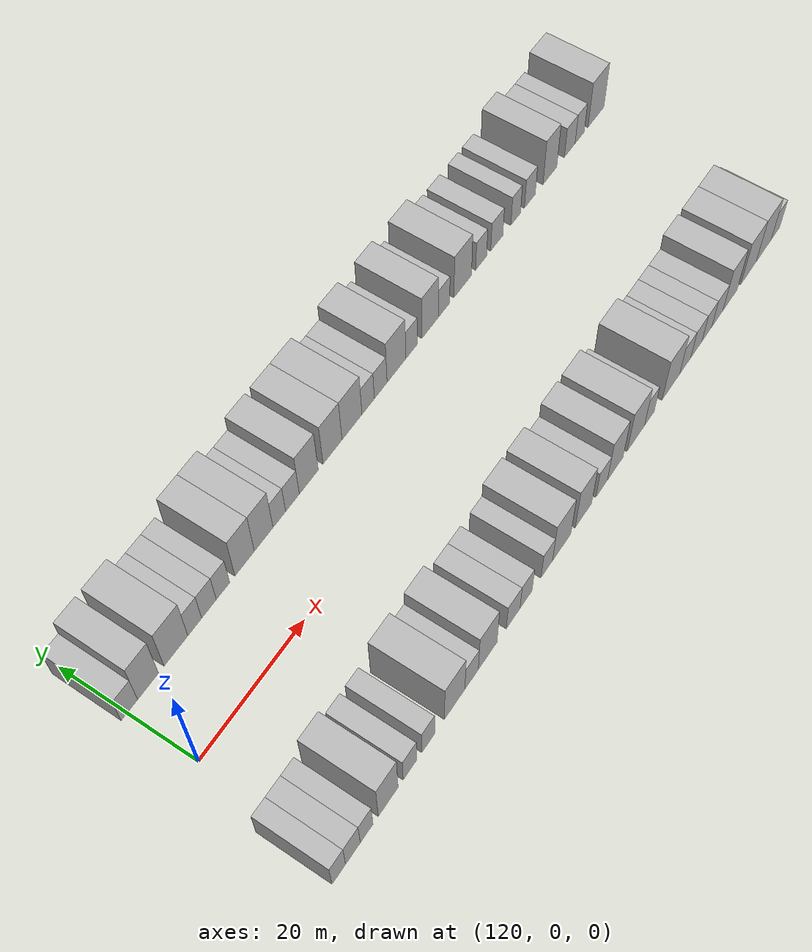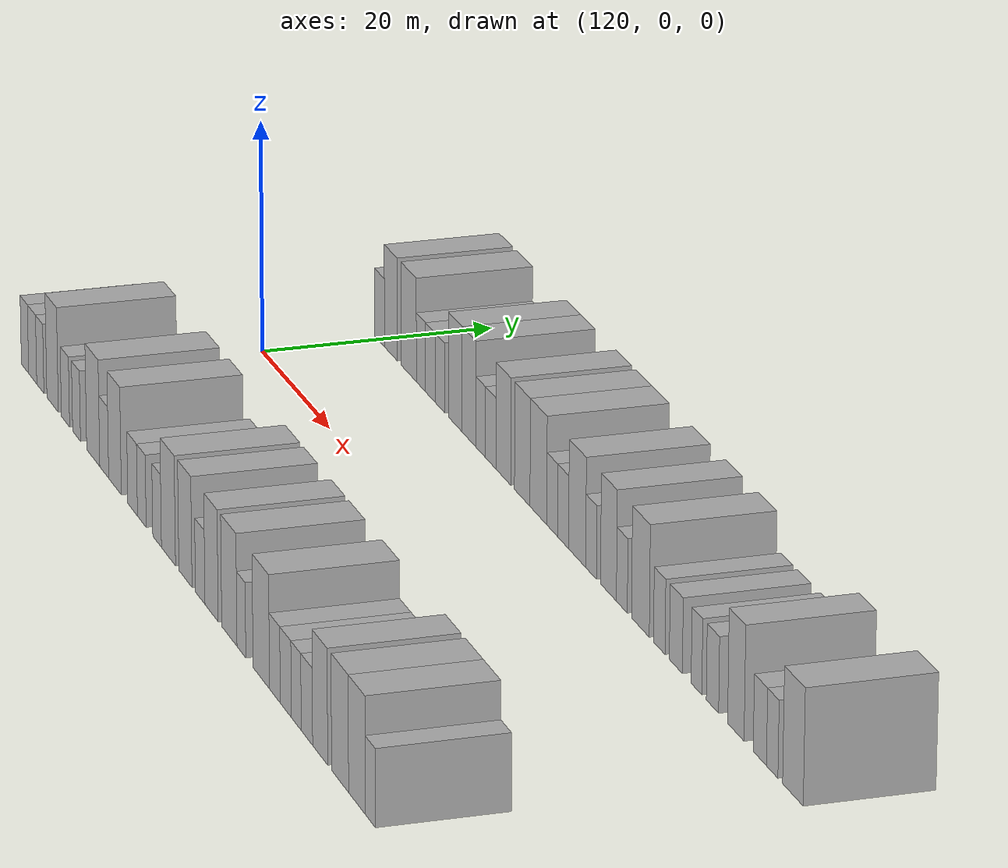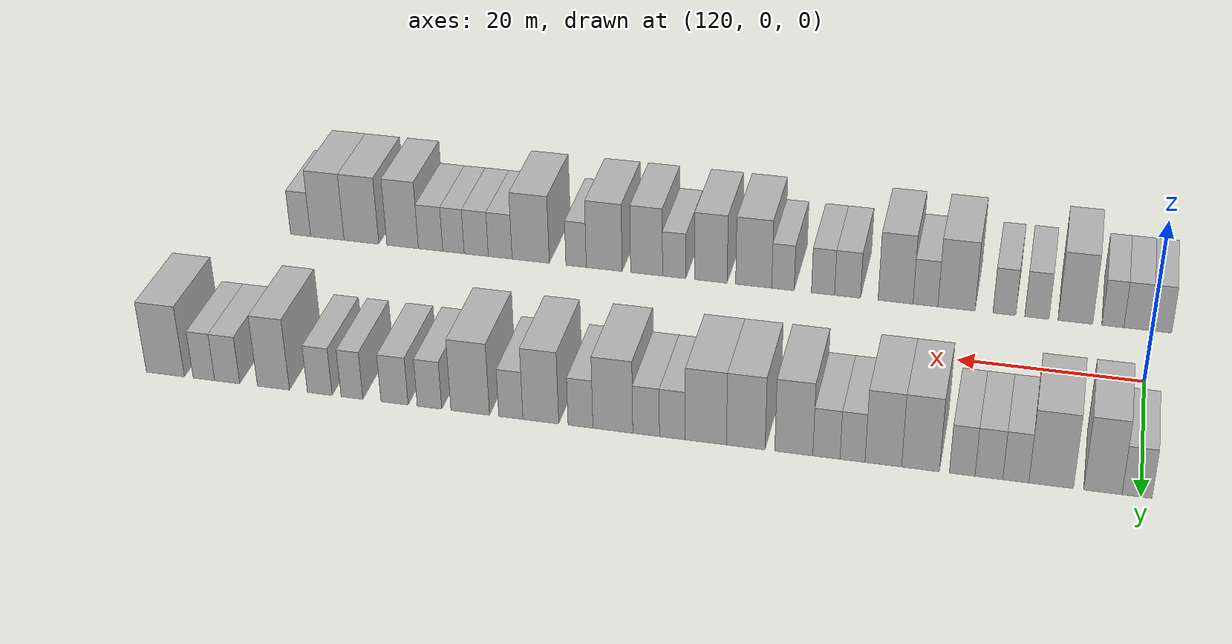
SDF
<sdf version="1.6">
 <world name="default">
  <model name="building_29">
   <static>1</static>
   <pose>120.4234 15.0000 0 0.000000 0.000000 1.570796</pose>
   <link name="link">
    <pose>0 0 3.00 0 0 0</pose>
    <collision name="collision"><geometry><box><size>10.0000 2.9247 6.0000</size></box></geometry></collision>
    <visual name="visual">
     <cast_shadows>0</cast_shadows>
     <geometry><box><size>10.0000 2.9247 6.0000</size></box></geometry>
     <material>
      <script>
       <uri>model://HANNAS_wall/materials/scripts</uri>
       <uri>model://HANNAS_wall/materials/textures</uri>
       <name>vrc/HANNAS_wall</name>
      </script>
     </material>
    </visual>
   </link>
  </model>
  <model name="building_30">
   <static>1</static>
   <pose>123.7611 15.0000 0 0.000000 0.000000 1.570796</pose>
   <link name="link">
    <pose>0 0 4.50 0 0 0</pose>
    <collision name="collision"><geometry><box><size>10.0000 3.7508 9.0000</size></box></geometry></collision>
    <visual name="visual">
     <cast_shadows>0</cast_shadows>
     <geometry><box><size>10.0000 3.7508 9.0000</size></box></geometry>
     <material>
      <script>
       <uri>model://HANNAS_wall/materials/scripts</uri>
       <uri>model://HANNAS_wall/materials/textures</uri>
       <name>vrc/HANNAS_wall</name>
      </script>
     </material>
    </visual>
   </link>
  </model>
  <model name="building_31">
   <static>1</static>
   <pose>128.8408 15.0000 0 0.000000 0.000000 1.570796</pose>
   <link name="link">
    <pose>0 0 4.50 0 0 0</pose>
    <collision name="collision"><geometry><box><size>10.0000 4.4086 9.0000</size></box></geometry></collision>
    <visual name="visual">
     <cast_shadows>0</cast_shadows>
     <geometry><box><size>10.0000 4.4086 9.0000</size></box></geometry>
     <material>
      <script>
       <uri>model://HANNAS_wall/materials/scripts</uri>
       <uri>model://HANNAS_wall/materials/textures</uri>
       <name>vrc/HANNAS_wall</name>
      </script>
     </material>
    </visual>
   </link>
  </model>
  <model name="building_32">
   <static>1</static>
   <pose>132.3393 15.0000 0 0.000000 0.000000 1.570796</pose>
   <link name="link">
    <pose>0 0 3.00 0 0 0</pose>
    <collision name="collision"><geometry><box><size>10.0000 2.5883 6.0000</size></box></geometry></collision>
    <visual name="visual">
     <cast_shadows>0</cast_shadows>
     <geometry><box><size>10.0000 2.5883 6.0000</size></box></geometry>
     <material>
      <script>
       <uri>model://HANNAS_wall/materials/scripts</uri>
       <uri>model://HANNAS_wall/materials/textures</uri>
       <name>vrc/HANNAS_wall</name>
      </script>
     </material>
    </visual>
   </link>
  </model>
  <model name="building_33">
   <static>1</static>
   <pose>135.0188 15.0000 0 0.000000 0.000000 1.570796</pose>
   <link name="link">
    <pose>0 0 3.00 0 0 0</pose>
    <collision name="collision"><geometry><box><size>10.0000 2.7707 6.0000</size></box></geometry></collision>
    <visual name="visual">
     <cast_shadows>0</cast_shadows>
     <geometry><box><size>10.0000 2.7707 6.0000</size></box></geometry>
     <material>
      <script>
       <uri>model://HANNAS_wall/materials/scripts</uri>
       <uri>model://HANNAS_wall/materials/textures</uri>
       <name>vrc/HANNAS_wall</name>
      </script>
     </material>
    </visual>
   </link>
  </model>
  <model name="building_34">
   <static>1</static>
   <pose>137.6904 15.0000 0 0.000000 0.000000 1.570796</pose>
   <link name="link">
    <pose>0 0 3.00 0 0 0</pose>
    <collision name="collision"><geometry><box><size>10.0000 2.5725 6.0000</size></box></geometry></collision>
    <visual name="visual">
     <cast_shadows>0</cast_shadows>
     <geometry><box><size>10.0000 2.5725 6.0000</size></box></geometry>
     <material>
      <script>
       <uri>model://HANNAS_wall/materials/scripts</uri>
       <uri>model://HANNAS_wall/materials/textures</uri>
       <name>vrc/HANNAS_wall</name>
      </script>
     </material>
    </visual>
   </link>
  </model>
  <model name="building_35">
   <static>1</static>
   <pose>141.8845 15.0000 0 0.000000 0.000000 1.570796</pose>
   <link name="link">
    <pose>0 0 4.50 0 0 0</pose>
    <collision name="collision"><geometry><box><size>10.0000 3.8157 9.0000</size></box></geometry></collision>
    <visual name="visual">
     <cast_shadows>0</cast_shadows>
     <geometry><box><size>10.0000 3.8157 9.0000</size></box></geometry>
     <material>
      <script>
       <uri>model://HANNAS_wall/materials/scripts</uri>
       <uri>model://HANNAS_wall/materials/textures</uri>
       <name>vrc/HANNAS_wall</name>
      </script>
     </material>
    </visual>
   </link>
  </model>
  <model name="building_36">
   <static>1</static>
   <pose>145.6510 15.0000 0 0.000000 0.000000 1.570796</pose>
   <link name="link">
    <pose>0 0 4.50 0 0 0</pose>
    <collision name="collision"><geometry><box><size>10.0000 3.7173 9.0000</size></box></geometry></collision>
    <visual name="visual">
     <cast_shadows>0</cast_shadows>
     <geometry><box><size>10.0000 3.7173 9.0000</size></box></geometry>
     <material>
      <script>
       <uri>model://HANNAS_wall/materials/scripts</uri>
       <uri>model://HANNAS_wall/materials/textures</uri>
       <name>vrc/HANNAS_wall</name>
      </script>
     </material>
    </visual>
   </link>
  </model>
  <model name="building_37">
   <static>1</static>
   <pose>148.7827 15.0000 0 0.000000 0.000000 1.570796</pose>
   <link name="link">
    <pose>0 0 3.00 0 0 0</pose>
    <collision name="collision"><geometry><box><size>10.0000 2.5460 6.0000</size></box></geometry></collision>
    <visual name="visual">
     <cast_shadows>0</cast_shadows>
     <geometry><box><size>10.0000 2.5460 6.0000</size></box></geometry>
     <material>
      <script>
       <uri>model://HANNAS_wall/materials/scripts</uri>
       <uri>model://HANNAS_wall/materials/textures</uri>
       <name>vrc/HANNAS_wall</name>
      </script>
     </material>
    </visual>
   </link>
  </model>
  <model name="building_38">
   <static>1</static>
   <pose>151.4500 15.0000 0 0.000000 0.000000 1.570796</pose>
   <link name="link">
    <pose>0 0 3.00 0 0 0</pose>
    <collision name="collision"><geometry><box><size>10.0000 2.7886 6.0000</size></box></geometry></collision>
    <visual name="visual">
     <cast_shadows>0</cast_shadows>
     <geometry><box><size>10.0000 2.7886 6.0000</size></box></geometry>
     <material>
      <script>
       <uri>model://HANNAS_wall/materials/scripts</uri>
       <uri>model://HANNAS_wall/materials/textures</uri>
       <name>vrc/HANNAS_wall</name>
      </script>
     </material>
    </visual>
   </link>
  </model>
  <model name="building_39">
   <static>1</static>
   <pose>154.8027 15.0000 0 0.000000 0.000000 1.570796</pose>
   <link name="link">
    <pose>0 0 4.50 0 0 0</pose>
    <collision name="collision"><geometry><box><size>10.0000 3.9167 9.0000</size></box></geometry></collision>
    <visual name="visual">
     <cast_shadows>0</cast_shadows>
     <geometry><box><size>10.0000 3.9167 9.0000</size></box></geometry>
     <material>
      <script>
       <uri>model://HANNAS_wall/materials/scripts</uri>
       <uri>model://HANNAS_wall/materials/textures</uri>
       <name>vrc/HANNAS_wall</name>
      </script>
     </material>
    </visual>
   </link>
  </model>
  <model name="building_40">
   <static>1</static>
   <pose>159.7739 15.0000 0 0.000000 0.000000 1.570796</pose>
   <link name="link">
    <pose>0 0 4.50 0 0 0</pose>
    <collision name="collision"><geometry><box><size>10.0000 4.0258 9.0000</size></box></geometry></collision>
    <visual name="visual">
     <cast_shadows>0</cast_shadows>
     <geometry><box><size>10.0000 4.0258 9.0000</size></box></geometry>
     <material>
      <script>
       <uri>model://HANNAS_wall/materials/scripts</uri>
       <uri>model://HANNAS_wall/materials/textures</uri>
       <name>vrc/HANNAS_wall</name>
      </script>
     </material>
    </visual>
   </link>
  </model>
  <model name="building_41">
   <static>1</static>
   <pose>163.9372 15.0000 0 0.000000 0.000000 1.570796</pose>
   <link name="link">
    <pose>0 0 4.50 0 0 0</pose>
    <collision name="collision"><geometry><box><size>10.0000 4.3008 9.0000</size></box></geometry></collision>
    <visual name="visual">
     <cast_shadows>0</cast_shadows>
     <geometry><box><size>10.0000 4.3008 9.0000</size></box></geometry>
     <material>
      <script>
       <uri>model://HANNAS_wall/materials/scripts</uri>
       <uri>model://HANNAS_wall/materials/textures</uri>
       <name>vrc/HANNAS_wall</name>
      </script>
     </material>
    </visual>
   </link>
  </model>
  <model name="building_42">
   <static>1</static>
   <pose>167.4386 15.0000 0 0.000000 0.000000 1.570796</pose>
   <link name="link">
    <pose>0 0 3.00 0 0 0</pose>
    <collision name="collision"><geometry><box><size>10.0000 2.7020 6.0000</size></box></geometry></collision>
    <visual name="visual">
     <cast_shadows>0</cast_shadows>
     <geometry><box><size>10.0000 2.7020 6.0000</size></box></geometry>
     <material>
      <script>
       <uri>model://HANNAS_wall/materials/scripts</uri>
       <uri>model://HANNAS_wall/materials/textures</uri>
       <name>vrc/HANNAS_wall</name>
      </script>
     </material>
    </visual>
   </link>
  </model>
  <model name="building_43">
   <static>1</static>
   <pose>170.1975 15.0000 0 0.000000 0.000000 1.570796</pose>
   <link name="link">
    <pose>0 0 3.00 0 0 0</pose>
    <collision name="collision"><geometry><box><size>10.0000 2.8158 6.0000</size></box></geometry></collision>
    <visual name="visual">
     <cast_shadows>0</cast_shadows>
     <geometry><box><size>10.0000 2.8158 6.0000</size></box></geometry>
     <material>
      <script>
       <uri>model://HANNAS_wall/materials/scripts</uri>
       <uri>model://HANNAS_wall/materials/textures</uri>
       <name>vrc/HANNAS_wall</name>
      </script>
     </material>
    </visual>
   </link>
  </model>
  <model name="building_44">
   <static>1</static>
   <pose>173.7236 15.0000 0 0.000000 0.000000 1.570796</pose>
   <link name="link">
    <pose>0 0 4.50 0 0 0</pose>
    <collision name="collision"><geometry><box><size>10.0000 4.2362 9.0000</size></box></geometry></collision>
    <visual name="visual">
     <cast_shadows>0</cast_shadows>
     <geometry><box><size>10.0000 4.2362 9.0000</size></box></geometry>
     <material>
      <script>
       <uri>model://HANNAS_wall/materials/scripts</uri>
       <uri>model://HANNAS_wall/materials/textures</uri>
       <name>vrc/HANNAS_wall</name>
      </script>
     </material>
    </visual>
   </link>
  </model>
  <model name="building_45">
   <static>1</static>
   <pose>177.1646 15.0000 0 0.000000 0.000000 1.570796</pose>
   <link name="link">
    <pose>0 0 3.00 0 0 0</pose>
    <collision name="collision"><geometry><box><size>10.0000 2.6458 6.0000</size></box></geometry></collision>
    <visual name="visual">
     <cast_shadows>0</cast_shadows>
     <geometry><box><size>10.0000 2.6458 6.0000</size></box></geometry>
     <material>
      <script>
       <uri>model://HANNAS_wall/materials/scripts</uri>
       <uri>model://HANNAS_wall/materials/textures</uri>
       <name>vrc/HANNAS_wall</name>
      </script>
     </material>
    </visual>
   </link>
  </model>
  <model name="building_46">
   <static>1</static>
   <pose>181.4121 15.0000 0 0.000000 0.000000 1.570796</pose>
   <link name="link">
    <pose>0 0 4.50 0 0 0</pose>
    <collision name="collision"><geometry><box><size>10.0000 3.8492 9.0000</size></box></geometry></collision>
    <visual name="visual">
     <cast_shadows>0</cast_shadows>
     <geometry><box><size>10.0000 3.8492 9.0000</size></box></geometry>
     <material>
      <script>
       <uri>model://HANNAS_wall/materials/scripts</uri>
       <uri>model://HANNAS_wall/materials/textures</uri>
       <name>vrc/HANNAS_wall</name>
      </script>
     </material>
    </visual>
   </link>
  </model>
  <model name="building_47">
   <static>1</static>
   <pose>184.6428 15.0000 0 0.000000 0.000000 1.570796</pose>
   <link name="link">
    <pose>0 0 3.00 0 0 0</pose>
    <collision name="collision"><geometry><box><size>10.0000 2.6121 6.0000</size></box></geometry></collision>
    <visual name="visual">
     <cast_shadows>0</cast_shadows>
     <geometry><box><size>10.0000 2.6121 6.0000</size></box></geometry>
     <material>
      <script>
       <uri>model://HANNAS_wall/materials/scripts</uri>
       <uri>model://HANNAS_wall/materials/textures</uri>
       <name>vrc/HANNAS_wall</name>
      </script>
     </material>
    </visual>
   </link>
  </model>
  <model name="building_48">
   <static>1</static>
   <pose>189.0497 15.0000 0 0.000000 0.000000 1.570796</pose>
   <link name="link">
    <pose>0 0 4.50 0 0 0</pose>
    <collision name="collision"><geometry><box><size>10.0000 4.2017 9.0000</size></box></geometry></collision>
    <visual name="visual">
     <cast_shadows>0</cast_shadows>
     <geometry><box><size>10.0000 4.2017 9.0000</size></box></geometry>
     <material>
      <script>
       <uri>model://HANNAS_wall/materials/scripts</uri>
       <uri>model://HANNAS_wall/materials/textures</uri>
       <name>vrc/HANNAS_wall</name>
      </script>
     </material>
    </visual>
   </link>
  </model>
  <model name="building_49">
   <static>1</static>
   <pose>193.4907 15.0000 0 0.000000 0.000000 1.570796</pose>
   <link name="link">
    <pose>0 0 3.00 0 0 0</pose>
    <collision name="collision"><geometry><box><size>10.0000 2.6802 6.0000</size></box></geometry></collision>
    <visual name="visual">
     <cast_shadows>0</cast_shadows>
     <geometry><box><size>10.0000 2.6802 6.0000</size></box></geometry>
     <material>
      <script>
       <uri>model://HANNAS_wall/materials/scripts</uri>
       <uri>model://HANNAS_wall/materials/textures</uri>
       <name>vrc/HANNAS_wall</name>
      </script>
     </material>
    </visual>
   </link>
  </model>
  <model name="building_50">
   <static>1</static>
   <pose>197.3285 15.0000 0 0.000000 0.000000 1.570796</pose>
   <link name="link">
    <pose>0 0 3.00 0 0 0</pose>
    <collision name="collision"><geometry><box><size>10.0000 2.9954 6.0000</size></box></geometry></collision>
    <visual name="visual">
     <cast_shadows>0</cast_shadows>
     <geometry><box><size>10.0000 2.9954 6.0000</size></box></geometry>
     <material>
      <script>
       <uri>model://HANNAS_wall/materials/scripts</uri>
       <uri>model://HANNAS_wall/materials/textures</uri>
       <name>vrc/HANNAS_wall</name>
      </script>
     </material>
    </visual>
   </link>
  </model>
  <model name="building_51">
   <static>1</static>
   <pose>202.0354 15.0000 0 0.000000 0.000000 1.570796</pose>
   <link name="link">
    <pose>0 0 3.00 0 0 0</pose>
    <collision name="collision"><geometry><box><size>10.0000 2.4184 6.0000</size></box></geometry></collision>
    <visual name="visual">
     <cast_shadows>0</cast_shadows>
     <geometry><box><size>10.0000 2.4184 6.0000</size></box></geometry>
     <material>
      <script>
       <uri>model://HANNAS_wall/materials/scripts</uri>
       <uri>model://HANNAS_wall/materials/textures</uri>
       <name>vrc/HANNAS_wall</name>
      </script>
     </material>
    </visual>
   </link>
  </model>
  <model name="building_52">
   <static>1</static>
   <pose>205.6255 15.0000 0 0.000000 0.000000 1.570796</pose>
   <link name="link">
    <pose>0 0 3.00 0 0 0</pose>
    <collision name="collision"><geometry><box><size>10.0000 2.7619 6.0000</size></box></geometry></collision>
    <visual name="visual">
     <cast_shadows>0</cast_shadows>
     <geometry><box><size>10.0000 2.7619 6.0000</size></box></geometry>
     <material>
      <script>
       <uri>model://HANNAS_wall/materials/scripts</uri>
       <uri>model://HANNAS_wall/materials/textures</uri>
       <name>vrc/HANNAS_wall</name>
      </script>
     </material>
    </visual>
   </link>
  </model>
  <model name="building_53">
   <static>1</static>
   <pose>210.8117 15.0000 0 0.000000 0.000000 1.570796</pose>
   <link name="link">
    <pose>0 0 4.50 0 0 0</pose>
    <collision name="collision"><geometry><box><size>10.0000 3.6105 9.0000</size></box></geometry></collision>
    <visual name="visual">
     <cast_shadows>0</cast_shadows>
     <geometry><box><size>10.0000 3.6105 9.0000</size></box></geometry>
     <material>
      <script>
       <uri>model://HANNAS_wall/materials/scripts</uri>
       <uri>model://HANNAS_wall/materials/textures</uri>
       <name>vrc/HANNAS_wall</name>
      </script>
     </material>
    </visual>
   </link>
  </model>
  <model name="building_54">
   <static>1</static>
   <pose>216.0396 15.0000 0 0.000000 0.000000 1.570796</pose>
   <link name="link">
    <pose>0 0 3.00 0 0 0</pose>
    <collision name="collision"><geometry><box><size>10.0000 2.8452 6.0000</size></box></geometry></collision>
    <visual name="visual">
     <cast_shadows>0</cast_shadows>
     <geometry><box><size>10.0000 2.8452 6.0000</size></box></geometry>
     <material>
      <script>
       <uri>model://HANNAS_wall/materials/scripts</uri>
       <uri>model://HANNAS_wall/materials/textures</uri>
       <name>vrc/HANNAS_wall</name>
      </script>
     </material>
    </visual>
   </link>
  </model>
  <model name="building_55">
   <static>1</static>
   <pose>218.6882 15.0000 0 0.000000 0.000000 1.570796</pose>
   <link name="link">
    <pose>0 0 3.00 0 0 0</pose>
    <collision name="collision"><geometry><box><size>10.0000 2.4521 6.0000</size></box></geometry></collision>
    <visual name="visual">
     <cast_shadows>0</cast_shadows>
     <geometry><box><size>10.0000 2.4521 6.0000</size></box></geometry>
     <material>
      <script>
       <uri>model://HANNAS_wall/materials/scripts</uri>
       <uri>model://HANNAS_wall/materials/textures</uri>
       <name>vrc/HANNAS_wall</name>
      </script>
     </material>
    </visual>
   </link>
  </model>
  <model name="building_56">
   <static>1</static>
   <pose>223.0905 15.0000 0 0.000000 0.000000 1.570796</pose>
   <link name="link">
    <pose>0 0 4.50 0 0 0</pose>
    <collision name="collision"><geometry><box><size>10.0000 4.3525 9.0000</size></box></geometry></collision>
    <visual name="visual">
     <cast_shadows>0</cast_shadows>
     <geometry><box><size>10.0000 4.3525 9.0000</size></box></geometry>
     <material>
      <script>
       <uri>model://HANNAS_wall/materials/scripts</uri>
       <uri>model://HANNAS_wall/materials/textures</uri>
       <name>vrc/HANNAS_wall</name>
      </script>
     </material>
    </visual>
   </link>
  </model>
  <model name="building_84">
   <static>1</static>
   <pose>118.4570 -15.0000 0 0.000000 0.000000 1.570796</pose>
   <link name="link">
    <pose>0 0 3.00 0 0 0</pose>
    <collision name="collision"><geometry><box><size>10.0000 2.4845 6.0000</size></box></geometry></collision>
    <visual name="visual">
     <cast_shadows>0</cast_shadows>
     <geometry><box><size>10.0000 2.4845 6.0000</size></box></geometry>
     <material>
      <script>
       <uri>model://HANNAS_wall/materials/scripts</uri>
       <uri>model://HANNAS_wall/materials/textures</uri>
       <name>vrc/HANNAS_wall</name>
      </script>
     </material>
    </visual>
   </link>
  </model>
  <model name="building_85">
   <static>1</static>
   <pose>121.0704 -15.0000 0 0.000000 0.000000 1.570796</pose>
   <link name="link">
    <pose>0 0 3.00 0 0 0</pose>
    <collision name="collision"><geometry><box><size>10.0000 2.7423 6.0000</size></box></geometry></collision>
    <visual name="visual">
     <cast_shadows>0</cast_shadows>
     <geometry><box><size>10.0000 2.7423 6.0000</size></box></geometry>
     <material>
      <script>
       <uri>model://HANNAS_wall/materials/scripts</uri>
       <uri>model://HANNAS_wall/materials/textures</uri>
       <name>vrc/HANNAS_wall</name>
      </script>
     </material>
    </visual>
   </link>
  </model>
  <model name="building_86">
   <static>1</static>
   <pose>123.6475 -15.0000 0 0.000000 0.000000 1.570796</pose>
   <link name="link">
    <pose>0 0 3.00 0 0 0</pose>
    <collision name="collision"><geometry><box><size>10.0000 2.4119 6.0000</size></box></geometry></collision>
    <visual name="visual">
     <cast_shadows>0</cast_shadows>
     <geometry><box><size>10.0000 2.4119 6.0000</size></box></geometry>
     <material>
      <script>
       <uri>model://HANNAS_wall/materials/scripts</uri>
       <uri>model://HANNAS_wall/materials/textures</uri>
       <name>vrc/HANNAS_wall</name>
      </script>
     </material>
    </visual>
   </link>
  </model>
  <model name="building_87">
   <static>1</static>
   <pose>127.7627 -15.0000 0 0.000000 0.000000 1.570796</pose>
   <link name="link">
    <pose>0 0 4.50 0 0 0</pose>
    <collision name="collision"><geometry><box><size>10.0000 3.8185 9.0000</size></box></geometry></collision>
    <visual name="visual">
     <cast_shadows>0</cast_shadows>
     <geometry><box><size>10.0000 3.8185 9.0000</size></box></geometry>
     <material>
      <script>
       <uri>model://HANNAS_wall/materials/scripts</uri>
       <uri>model://HANNAS_wall/materials/textures</uri>
       <name>vrc/HANNAS_wall</name>
      </script>
     </material>
    </visual>
   </link>
  </model>
  <model name="building_88">
   <static>1</static>
   <pose>132.0175 -15.0000 0 0.000000 0.000000 1.570796</pose>
   <link name="link">
    <pose>0 0 3.00 0 0 0</pose>
    <collision name="collision"><geometry><box><size>10.0000 2.6910 6.0000</size></box></geometry></collision>
    <visual name="visual">
     <cast_shadows>0</cast_shadows>
     <geometry><box><size>10.0000 2.6910 6.0000</size></box></geometry>
     <material>
      <script>
       <uri>model://HANNAS_wall/materials/scripts</uri>
       <uri>model://HANNAS_wall/materials/textures</uri>
       <name>vrc/HANNAS_wall</name>
      </script>
     </material>
    </visual>
   </link>
  </model>
  <model name="building_89">
   <static>1</static>
   <pose>135.6358 -15.0000 0 0.000000 0.000000 1.570796</pose>
   <link name="link">
    <pose>0 0 3.00 0 0 0</pose>
    <collision name="collision"><geometry><box><size>10.0000 2.5457 6.0000</size></box></geometry></collision>
    <visual name="visual">
     <cast_shadows>0</cast_shadows>
     <geometry><box><size>10.0000 2.5457 6.0000</size></box></geometry>
     <material>
      <script>
       <uri>model://HANNAS_wall/materials/scripts</uri>
       <uri>model://HANNAS_wall/materials/textures</uri>
       <name>vrc/HANNAS_wall</name>
      </script>
     </material>
    </visual>
   </link>
  </model>
  <model name="building_90">
   <static>1</static>
   <pose>140.9981 -15.0000 0 0.000000 0.000000 1.570796</pose>
   <link name="link">
    <pose>0 0 4.50 0 0 0</pose>
    <collision name="collision"><geometry><box><size>10.0000 4.1790 9.0000</size></box></geometry></collision>
    <visual name="visual">
     <cast_shadows>0</cast_shadows>
     <geometry><box><size>10.0000 4.1790 9.0000</size></box></geometry>
     <material>
      <script>
       <uri>model://HANNAS_wall/materials/scripts</uri>
       <uri>model://HANNAS_wall/materials/textures</uri>
       <name>vrc/HANNAS_wall</name>
      </script>
     </material>
    </visual>
   </link>
  </model>
  <model name="building_91">
   <static>1</static>
   <pose>144.4932 -15.0000 0 0.000000 0.000000 1.570796</pose>
   <link name="link">
    <pose>0 0 3.00 0 0 0</pose>
    <collision name="collision"><geometry><box><size>10.0000 2.8111 6.0000</size></box></geometry></collision>
    <visual name="visual">
     <cast_shadows>0</cast_shadows>
     <geometry><box><size>10.0000 2.8111 6.0000</size></box></geometry>
     <material>
      <script>
       <uri>model://HANNAS_wall/materials/scripts</uri>
       <uri>model://HANNAS_wall/materials/textures</uri>
       <name>vrc/HANNAS_wall</name>
      </script>
     </material>
    </visual>
   </link>
  </model>
  <model name="building_92">
   <static>1</static>
   <pose>147.8832 -15.0000 0 0.000000 0.000000 1.570796</pose>
   <link name="link">
    <pose>0 0 4.50 0 0 0</pose>
    <collision name="collision"><geometry><box><size>10.0000 3.9689 9.0000</size></box></geometry></collision>
    <visual name="visual">
     <cast_shadows>0</cast_shadows>
     <geometry><box><size>10.0000 3.9689 9.0000</size></box></geometry>
     <material>
      <script>
       <uri>model://HANNAS_wall/materials/scripts</uri>
       <uri>model://HANNAS_wall/materials/textures</uri>
       <name>vrc/HANNAS_wall</name>
      </script>
     </material>
    </visual>
   </link>
  </model>
  <model name="building_93">
   <static>1</static>
   <pose>153.3509 -15.0000 0 0.000000 0.000000 1.570796</pose>
   <link name="link">
    <pose>0 0 3.00 0 0 0</pose>
    <collision name="collision"><geometry><box><size>10.0000 2.9666 6.0000</size></box></geometry></collision>
    <visual name="visual">
     <cast_shadows>0</cast_shadows>
     <geometry><box><size>10.0000 2.9666 6.0000</size></box></geometry>
     <material>
      <script>
       <uri>model://HANNAS_wall/materials/scripts</uri>
       <uri>model://HANNAS_wall/materials/textures</uri>
       <name>vrc/HANNAS_wall</name>
      </script>
     </material>
    </visual>
   </link>
  </model>
  <model name="building_94">
   <static>1</static>
   <pose>156.1638 -15.0000 0 0.000000 0.000000 1.570796</pose>
   <link name="link">
    <pose>0 0 3.00 0 0 0</pose>
    <collision name="collision"><geometry><box><size>10.0000 2.6591 6.0000</size></box></geometry></collision>
    <visual name="visual">
     <cast_shadows>0</cast_shadows>
     <geometry><box><size>10.0000 2.6591 6.0000</size></box></geometry>
     <material>
      <script>
       <uri>model://HANNAS_wall/materials/scripts</uri>
       <uri>model://HANNAS_wall/materials/textures</uri>
       <name>vrc/HANNAS_wall</name>
      </script>
     </material>
    </visual>
   </link>
  </model>
  <model name="building_95">
   <static>1</static>
   <pose>160.7914 -15.0000 0 0.000000 0.000000 1.570796</pose>
   <link name="link">
    <pose>0 0 3.00 0 0 0</pose>
    <collision name="collision"><geometry><box><size>10.0000 2.5963 6.0000</size></box></geometry></collision>
    <visual name="visual">
     <cast_shadows>0</cast_shadows>
     <geometry><box><size>10.0000 2.5963 6.0000</size></box></geometry>
     <material>
      <script>
       <uri>model://HANNAS_wall/materials/scripts</uri>
       <uri>model://HANNAS_wall/materials/textures</uri>
       <name>vrc/HANNAS_wall</name>
      </script>
     </material>
    </visual>
   </link>
  </model>
  <model name="building_96">
   <static>1</static>
   <pose>164.1792 -15.0000 0 0.000000 0.000000 1.570796</pose>
   <link name="link">
    <pose>0 0 4.50 0 0 0</pose>
    <collision name="collision"><geometry><box><size>10.0000 4.1791 9.0000</size></box></geometry></collision>
    <visual name="visual">
     <cast_shadows>0</cast_shadows>
     <geometry><box><size>10.0000 4.1791 9.0000</size></box></geometry>
     <material>
      <script>
       <uri>model://HANNAS_wall/materials/scripts</uri>
       <uri>model://HANNAS_wall/materials/textures</uri>
       <name>vrc/HANNAS_wall</name>
      </script>
     </material>
    </visual>
   </link>
  </model>
  <model name="building_97">
   <static>1</static>
   <pose>169.1868 -15.0000 0 0.000000 0.000000 1.570796</pose>
   <link name="link">
    <pose>0 0 4.50 0 0 0</pose>
    <collision name="collision"><geometry><box><size>10.0000 3.8361 9.0000</size></box></geometry></collision>
    <visual name="visual">
     <cast_shadows>0</cast_shadows>
     <geometry><box><size>10.0000 3.8361 9.0000</size></box></geometry>
     <material>
      <script>
       <uri>model://HANNAS_wall/materials/scripts</uri>
       <uri>model://HANNAS_wall/materials/textures</uri>
       <name>vrc/HANNAS_wall</name>
      </script>
     </material>
    </visual>
   </link>
  </model>
  <model name="building_98">
   <static>1</static>
   <pose>173.4789 -15.0000 0 0.000000 0.000000 1.570796</pose>
   <link name="link">
    <pose>0 0 3.00 0 0 0</pose>
    <collision name="collision"><geometry><box><size>10.0000 2.7482 6.0000</size></box></geometry></collision>
    <visual name="visual">
     <cast_shadows>0</cast_shadows>
     <geometry><box><size>10.0000 2.7482 6.0000</size></box></geometry>
     <material>
      <script>
       <uri>model://HANNAS_wall/materials/scripts</uri>
       <uri>model://HANNAS_wall/materials/textures</uri>
       <name>vrc/HANNAS_wall</name>
      </script>
     </material>
    </visual>
   </link>
  </model>
  <model name="building_99">
   <static>1</static>
   <pose>176.7372 -15.0000 0 0.000000 0.000000 1.570796</pose>
   <link name="link">
    <pose>0 0 4.50 0 0 0</pose>
    <collision name="collision"><geometry><box><size>10.0000 3.7684 9.0000</size></box></geometry></collision>
    <visual name="visual">
     <cast_shadows>0</cast_shadows>
     <geometry><box><size>10.0000 3.7684 9.0000</size></box></geometry>
     <material>
      <script>
       <uri>model://HANNAS_wall/materials/scripts</uri>
       <uri>model://HANNAS_wall/materials/textures</uri>
       <name>vrc/HANNAS_wall</name>
      </script>
     </material>
    </visual>
   </link>
  </model>
  <model name="building_100">
   <static>1</static>
   <pose>181.7575 -15.0000 0 0.000000 0.000000 1.570796</pose>
   <link name="link">
    <pose>0 0 4.50 0 0 0</pose>
    <collision name="collision"><geometry><box><size>10.0000 4.2721 9.0000</size></box></geometry></collision>
    <visual name="visual">
     <cast_shadows>0</cast_shadows>
     <geometry><box><size>10.0000 4.2721 9.0000</size></box></geometry>
     <material>
      <script>
       <uri>model://HANNAS_wall/materials/scripts</uri>
       <uri>model://HANNAS_wall/materials/textures</uri>
       <name>vrc/HANNAS_wall</name>
      </script>
     </material>
    </visual>
   </link>
  </model>
  <model name="building_101">
   <static>1</static>
   <pose>185.1149 -15.0000 0 0.000000 0.000000 1.570796</pose>
   <link name="link">
    <pose>0 0 3.00 0 0 0</pose>
    <collision name="collision"><geometry><box><size>10.0000 2.4427 6.0000</size></box></geometry></collision>
    <visual name="visual">
     <cast_shadows>0</cast_shadows>
     <geometry><box><size>10.0000 2.4427 6.0000</size></box></geometry>
     <material>
      <script>
       <uri>model://HANNAS_wall/materials/scripts</uri>
       <uri>model://HANNAS_wall/materials/textures</uri>
       <name>vrc/HANNAS_wall</name>
      </script>
     </material>
    </visual>
   </link>
  </model>
  <model name="building_102">
   <static>1</static>
   <pose>190.5794 -15.0000 0 0.000000 0.000000 1.570796</pose>
   <link name="link">
    <pose>0 0 4.50 0 0 0</pose>
    <collision name="collision"><geometry><box><size>10.0000 4.4863 9.0000</size></box></geometry></collision>
    <visual name="visual">
     <cast_shadows>0</cast_shadows>
     <geometry><box><size>10.0000 4.4863 9.0000</size></box></geometry>
     <material>
      <script>
       <uri>model://HANNAS_wall/materials/scripts</uri>
       <uri>model://HANNAS_wall/materials/textures</uri>
       <name>vrc/HANNAS_wall</name>
      </script>
     </material>
    </visual>
   </link>
  </model>
  <model name="building_103">
   <static>1</static>
   <pose>194.2664 -15.0000 0 0.000000 0.000000 1.570796</pose>
   <link name="link">
    <pose>0 0 3.00 0 0 0</pose>
    <collision name="collision"><geometry><box><size>10.0000 2.8878 6.0000</size></box></geometry></collision>
    <visual name="visual">
     <cast_shadows>0</cast_shadows>
     <geometry><box><size>10.0000 2.8878 6.0000</size></box></geometry>
     <material>
      <script>
       <uri>model://HANNAS_wall/materials/scripts</uri>
       <uri>model://HANNAS_wall/materials/textures</uri>
       <name>vrc/HANNAS_wall</name>
      </script>
     </material>
    </visual>
   </link>
  </model>
  <model name="building_104">
   <static>1</static>
   <pose>197.1810 -15.0000 0 0.000000 0.000000 1.570796</pose>
   <link name="link">
    <pose>0 0 3.00 0 0 0</pose>
    <collision name="collision"><geometry><box><size>10.0000 2.9413 6.0000</size></box></geometry></collision>
    <visual name="visual">
     <cast_shadows>0</cast_shadows>
     <geometry><box><size>10.0000 2.9413 6.0000</size></box></geometry>
     <material>
      <script>
       <uri>model://HANNAS_wall/materials/scripts</uri>
       <uri>model://HANNAS_wall/materials/textures</uri>
       <name>vrc/HANNAS_wall</name>
      </script>
     </material>
    </visual>
   </link>
  </model>
  <model name="building_105">
   <static>1</static>
   <pose>199.9597 -15.0000 0 0.000000 0.000000 1.570796</pose>
   <link name="link">
    <pose>0 0 3.00 0 0 0</pose>
    <collision name="collision"><geometry><box><size>10.0000 2.6160 6.0000</size></box></geometry></collision>
    <visual name="visual">
     <cast_shadows>0</cast_shadows>
     <geometry><box><size>10.0000 2.6160 6.0000</size></box></geometry>
     <material>
      <script>
       <uri>model://HANNAS_wall/materials/scripts</uri>
       <uri>model://HANNAS_wall/materials/textures</uri>
       <name>vrc/HANNAS_wall</name>
      </script>
     </material>
    </visual>
   </link>
  </model>
  <model name="building_106">
   <static>1</static>
   <pose>202.7623 -15.0000 0 0.000000 0.000000 1.570796</pose>
   <link name="link">
    <pose>0 0 3.00 0 0 0</pose>
    <collision name="collision"><geometry><box><size>10.0000 2.9893 6.0000</size></box></geometry></collision>
    <visual name="visual">
     <cast_shadows>0</cast_shadows>
     <geometry><box><size>10.0000 2.9893 6.0000</size></box></geometry>
     <material>
      <script>
       <uri>model://HANNAS_wall/materials/scripts</uri>
       <uri>model://HANNAS_wall/materials/textures</uri>
       <name>vrc/HANNAS_wall</name>
      </script>
     </material>
    </visual>
   </link>
  </model>
  <model name="building_107">
   <static>1</static>
   <pose>206.2005 -15.0000 0 0.000000 0.000000 1.570796</pose>
   <link name="link">
    <pose>0 0 4.50 0 0 0</pose>
    <collision name="collision"><geometry><box><size>10.0000 3.8871 9.0000</size></box></geometry></collision>
    <visual name="visual">
     <cast_shadows>0</cast_shadows>
     <geometry><box><size>10.0000 3.8871 9.0000</size></box></geometry>
     <material>
      <script>
       <uri>model://HANNAS_wall/materials/scripts</uri>
       <uri>model://HANNAS_wall/materials/textures</uri>
       <name>vrc/HANNAS_wall</name>
      </script>
     </material>
    </visual>
   </link>
  </model>
  <model name="building_108">
   <static>1</static>
   <pose>211.3000 -15.0000 0 0.000000 0.000000 1.570796</pose>
   <link name="link">
    <pose>0 0 4.50 0 0 0</pose>
    <collision name="collision"><geometry><box><size>10.0000 4.3118 9.0000</size></box></geometry></collision>
    <visual name="visual">
     <cast_shadows>0</cast_shadows>
     <geometry><box><size>10.0000 4.3118 9.0000</size></box></geometry>
     <material>
      <script>
       <uri>model://HANNAS_wall/materials/scripts</uri>
       <uri>model://HANNAS_wall/materials/textures</uri>
       <name>vrc/HANNAS_wall</name>
      </script>
     </material>
    </visual>
   </link>
  </model>
  <model name="building_109">
   <static>1</static>
   <pose>215.5465 -15.0000 0 0.000000 0.000000 1.570796</pose>
   <link name="link">
    <pose>0 0 4.50 0 0 0</pose>
    <collision name="collision"><geometry><box><size>10.0000 4.1812 9.0000</size></box></geometry></collision>
    <visual name="visual">
     <cast_shadows>0</cast_shadows>
     <geometry><box><size>10.0000 4.1812 9.0000</size></box></geometry>
     <material>
      <script>
       <uri>model://HANNAS_wall/materials/scripts</uri>
       <uri>model://HANNAS_wall/materials/textures</uri>
       <name>vrc/HANNAS_wall</name>
      </script>
     </material>
    </visual>
   </link>
  </model>
  <model name="building_110">
   <static>1</static>
   <pose>218.8907 -15.0000 0 0.000000 0.000000 1.570796</pose>
   <link name="link">
    <pose>0 0 3.00 0 0 0</pose>
    <collision name="collision"><geometry><box><size>10.0000 2.5072 6.0000</size></box></geometry></collision>
    <visual name="visual">
     <cast_shadows>0</cast_shadows>
     <geometry><box><size>10.0000 2.5072 6.0000</size></box></geometry>
     <material>
      <script>
       <uri>model://HANNAS_wall/materials/scripts</uri>
       <uri>model://HANNAS_wall/materials/textures</uri>
       <name>vrc/HANNAS_wall</name>
      </script>
     </material>
    </visual>
   </link>
  </model>
 </world>
</sdf>
